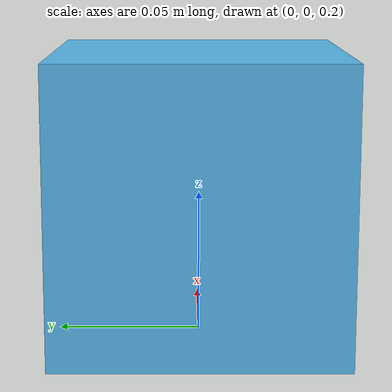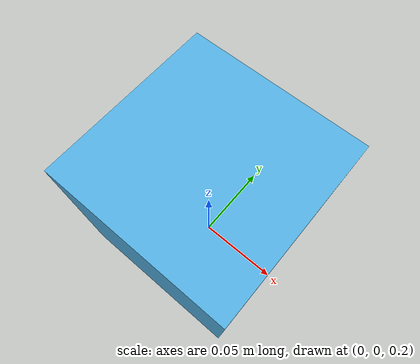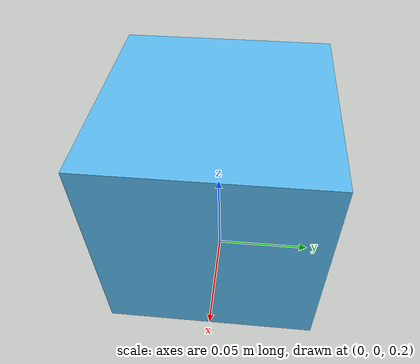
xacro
<?xml version="1.0"?>
<robot name="vendored_arm" xmlns:xacro="http://www.ros.org/wiki/xacro">
  <xacro:property name="shoulder_height" value="0.25"/>

  <link name="base_link"/>
  <link name="shoulder_link">
    <visual>
      <geometry>
        <box size="0.1 0.1 0.1"/>
      </geometry>
      <material name="brushed_aluminium"/>
    </visual>
  </link>
  <link name="tool_link"/>

  <joint name="base_to_shoulder" type="fixed">
    <parent link="base_link"/>
    <child link="shoulder_link"/>
    <origin xyz="0 0 ${shoulder_height}" rpy="0 0 0"/>
  </joint>

  <joint name="shoulder_to_tool" type="fixed">
    <parent link="shoulder_link"/>
    <child link="tool_link"/>
    <origin xyz="0 0 0.1" rpy="0 0 0"/>
  </joint>
</robot>
